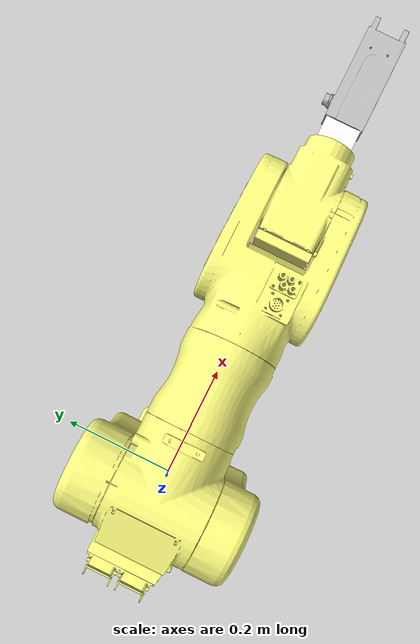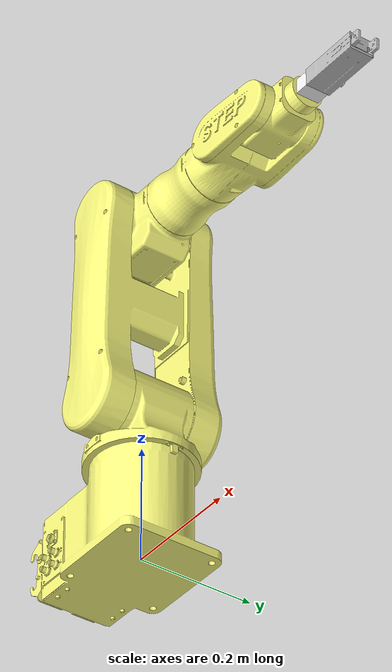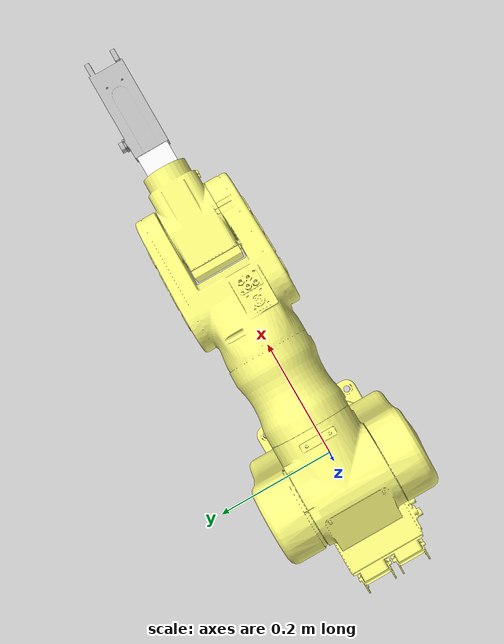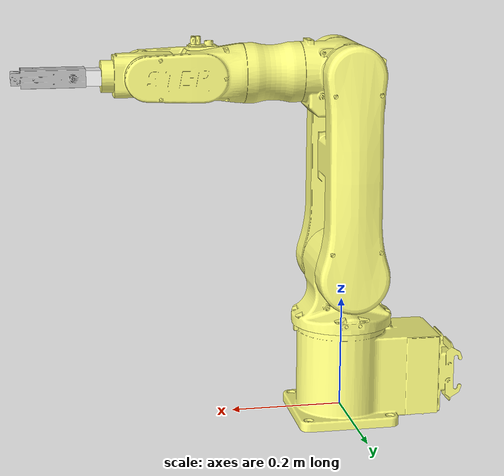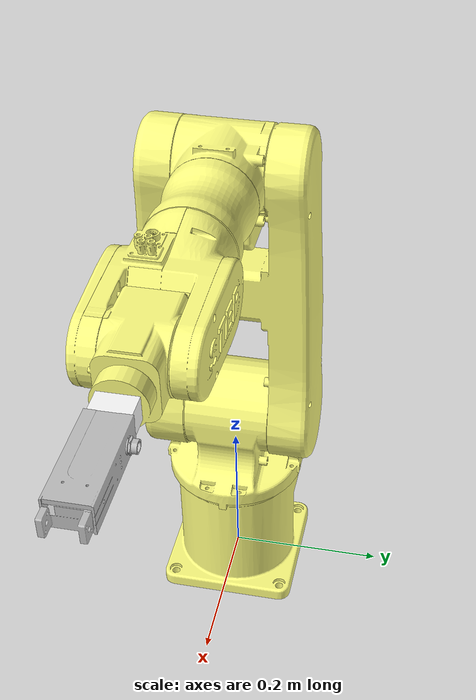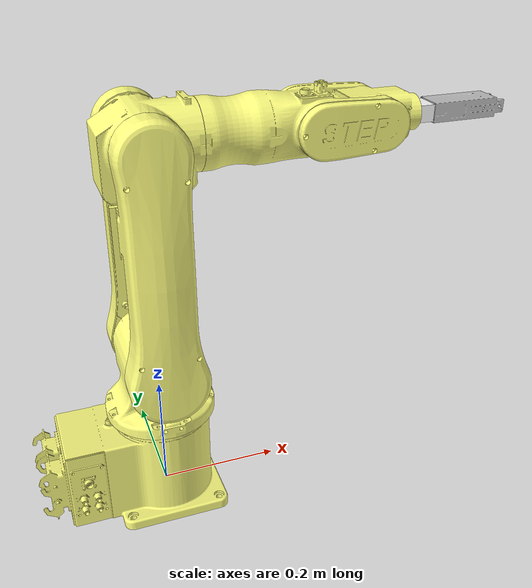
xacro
<?xml version="1.0"?>
<robot name="robot_sd700e" xmlns:xacro="http://ros.org/wiki/xacro">

  <xacro:property name="M_PI" value="3.1415926536"/>

  <link name="base_link">
    <inertial>
      <origin xyz="-0.0194690222590369 -0.000269188119329771 0.0669003838868867" rpy="0 0 0" />
      <mass value="0.1" />
      <inertia ixx="0.000153169404327002" ixy="1.65882461270346E-10" ixz="4.4079170251983E-07" iyy="0.000178370863576969" iyz="-2.76318351033745E-09" izz="0.000146674461881756" />
    </inertial>
    <visual>
      <origin xyz="0 0 0" rpy="0 0 0" />
      <geometry>
        <mesh filename="package://robot_sd700e_description/meshes/base_link.STL" />
      </geometry>
      <material name="">
        <color rgba="1 1 0.501960784313725 1" />
      </material>
    </visual>
    <collision>
      <origin xyz="0 0 0" rpy="0 0 0" />
      <geometry>
        <mesh filename="package://robot_sd700e_description/meshes/base_link.STL" />
      </geometry>
    </collision>
  </link>
  <link name="link1">
    <inertial>
      <origin xyz="6.24979528711656E-05 3.54756693043516E-05 0.0929610027302797" rpy="0 0 0" />
      <mass value="0.00001" />
      <inertia ixx="4.83982220972564E-05" ixy="-1.77040002978859E-10" ixz="3.19080107721578E-11" iyy="4.76414174481088E-05" iyz="-1.87834825511904E-09" izz="3.52854220263338E-05" />
    </inertial>
    <visual>
      <origin xyz="0 0 0" rpy="0 0 0" />
      <geometry>
        <mesh filename="package://robot_sd700e_description/meshes/link1.STL" />
      </geometry>
      <material name="">
        <color rgba="1 1 0.501960784313725 1" />
      </material>
    </visual>
    <collision>
      <origin xyz="0 0 0" rpy="0 0 0" />
      <geometry>
        <mesh filename="package://robot_sd700e_description/meshes/link1.STL" />
      </geometry>
    </collision>
  </link>
  <joint name="joint1" type="revolute">
    <origin xyz="0 0 0.145" rpy="0 0 0" />
    <parent link="base_link" />
    <child link="link1" />
    <!--axis xyz="0 0 -1" /-->
    <axis xyz="0 0 1" />
    <limit lower="-2.96" upper="2.96" effort="100" velocity="1" />
  </joint>
  <link
    name="link2">
    <inertial>
      <origin xyz="0.143798658237929 3.89335646278077E-06 0.0506443388040005" rpy="0 0 0" />
      <mass value="0.00001" />
      <inertia ixx="1.85130744568751E-05" ixy="2.76195499850968E-11" ixz="6.51979051130517E-06" iyy="0.000264350143112589" iyz="2.39001383154591E-09" izz="0.000275170391285063" />
    </inertial>
    <visual>
      <origin xyz="0 0 0" rpy="0 0 0" />
      <geometry>
        <mesh  filename="package://robot_sd700e_description/meshes/link2.STL" />
      </geometry>
      <material name="">
        <color rgba="1 1 0.501960784313725 1" />
      </material>
    </visual>
    <collision>
      <origin  xyz="0 0 0" rpy="0 0 0" />
      <geometry>
        <mesh  filename="package://robot_sd700e_description/meshes/link2.STL" />
      </geometry>
    </collision>
  </link>
  <joint name="joint2" type="revolute">
    <origin xyz="0 0 0.118" rpy="1.5708 -1.5708 3.1416" />
    <!--origin xyz="0 0 0.118" rpy="${M_PI / 2} 0 0" / -->
    <parent link="link1" />
    <child link="link2" />
    <axis xyz="0 0 1" />
    <!--axis xyz="0 0 -1" /-->
    <limit lower="-1.91" upper="1.91" effort="100" velocity="1" />
  </joint>
  <link name="link3">
    <inertial>
      <origin xyz="-0.0105511176614257 0.013415825069451 -0.000783677732801621" rpy="0 0 0" />
      <mass value="0.00001" />
      <inertia ixx="2.29601047838055E-05" ixy="-1.63719092770468E-06" ixz="1.81455332745205E-07" iyy="2.1162736058193E-05" iyz="-1.71577960757657E-07" izz="2.63069623781901E-05" />
    </inertial>
    <visual>
      <origin xyz="0 0 0" rpy="0 0 0" />
      <geometry>
        <mesh  filename="package://robot_sd700e_description/meshes/link3.STL" />
      </geometry>
      <material name="">
        <color rgba="1 1 0.501960784313725 1" />
      </material>
    </visual>
    <collision>
      <origin xyz="0 0 0" rpy="0 0 0" />
      <geometry>
        <mesh filename="package://robot_sd700e_description/meshes/link3.STL" />
      </geometry>
    </collision>
  </link>
  <joint name="joint3" type="revolute">
    <origin xyz="0.35 0 0" rpy="0 0 0" />
    <parent link="link2" />
    <child link="link3" />
    <axis xyz="0 0 1" />
    <limit lower="-3.83"  upper="0.69" effort="100" velocity="1" />
  </joint>
  <link name="link4">
    <inertial>
      <origin xyz="0.00053105459778995 0.00764519471507254 0.12487741102902" rpy="0 0 0" />
      <mass value="0.00001" />
      <inertia ixx="2.35060467930339E-05" ixy="-7.80273185679067E-09" ixz="-5.33242281859617E-09" iyy="2.4038986793376E-05" iyz="-3.24930744421448E-06" izz="1.06991610028112E-05" />
    </inertial>
    <visual>
      <origin xyz="0 0 0" rpy="0 0 0" />
      <geometry>
        <mesh filename="package://robot_sd700e_description/meshes/link4.STL" />
      </geometry>
      <material name="">
        <color rgba="1 1 0.501960784313725 1" />
      </material>
    </visual>
    <collision>
      <origin xyz="0 0 0" rpy="0 0 0" />
      <geometry>
        <mesh filename="package://robot_sd700e_description/meshes/link4.STL" />
      </geometry>
    </collision>
  </link>
  <joint name="joint4" type="revolute">
    <origin xyz="0 0.08 0" rpy="-1.5708 0 0" />
    <parent link="link3" />
    <child link="link4" />
    <!--axis xyz="0 0 -1" /-->
    <axis xyz="0 0 1" />
    <limit lower="-3.22" upper="3.22" effort="100" velocity="1" />
  </joint>
  <link name="link5">
    <inertial>
      <origin xyz="5.00388331529765E-06 0.017136564860525 -0.00579159800832729" rpy="0 0 0" />
      <mass value="0.00001" />
      <inertia ixx="3.02769220666609E-06" ixy="-6.63527422862123E-09" ixz="3.06980670851299E-09" iyy="1.6973682408079E-06" iyz="-2.1985747740643E-07" izz="3.30873178682241E-06" />
    </inertial>
    <visual>
      <origin xyz="0 0 0" rpy="0 0 0" />
      <geometry>
        <mesh filename="package://robot_sd700e_description/meshes/link5.STL" />
      </geometry>
      <material name="">
        <color rgba="1 1 0.501960784313725 1" />
      </material>
    </visual>
    <collision>
      <origin xyz="0 0 0" rpy="0 0 0" />
      <geometry>
        <mesh filename="package://robot_sd700e_description/meshes/link5.STL" />
      </geometry>
    </collision>
  </link>
  <joint name="joint5" type="revolute">
    <origin xyz="0 0 0.27" rpy="1.5708 0 0" />
    <parent link="link4" />
    <child link="link5" />
    <axis xyz="0 0 1" />
    <limit lower="-2.18" upper="2.18"  effort="100" velocity="1" />
  </joint>
  <link name="link6">
    <inertial>
      <origin xyz="2.98155597433514E-18 -2.16840434497101E-17 0.013" rpy="0 0 0" />
      <mass value="0.00001" />
      <inertia ixx="0" ixy="0" ixz="0" iyy="0" iyz="0" izz="0" />
    </inertial>
    <visual>
      <origin xyz="0 0 0" rpy="0 0 0" />
      <geometry>
        <mesh filename="package://robot_sd700e_description/meshes/link6.STL" />
      </geometry>
      <material name="">
        <color rgba="1 1 1 1" />
      </material>
    </visual>
    <collision>
      <origin xyz="0 0 0" rpy="0 0 0" />
      <geometry>
        <mesh filename="package://robot_sd700e_description/meshes/link6.STL" />
      </geometry>
    </collision>
  </link>
  <joint name="joint6" type="revolute">
    <origin xyz="0 0.0745 0" rpy="-1.5708 0 0" />
    <parent link="link5" />
    <child link="link6" />
    <!--axis xyz="0 0 -1" /-->
    <axis xyz="0 0 1" />
    <limit lower="-6.28" upper="6.28" effort="100" velocity="1" />
  </joint>
  <link name="link7">
    <inertial>
      <origin xyz="-2.4931047704497E-07 -0.00154228485453155 0.0894543761927693" rpy="0 0 0" />
      <mass value="0.00001" />
      <inertia ixx="2.20720617168517E-05" ixy="-1.33959955753033E-07" ixz="-4.80345012228219E-12" iyy="1.3850289704466E-05" iyz="1.22347910736772E-07" izz="2.41352773855343E-05" />
    </inertial>
    <visual>
      <origin xyz="0 0 0" rpy="0 0 0" />
      <geometry>
        <mesh filename="package://robot_sd700e_description/meshes/link7.STL" />
      </geometry>
      <material name="">
        <color rgba="0.752941176470588 0.752941176470588 0.752941176470588 1" />
      </material>
    </visual>
    <collision>
      <origin xyz="0 0 0" rpy="0 0 0" />
      <geometry>
        <mesh filename="package://robot_sd700e_description/meshes/link7.STL" />
      </geometry>
    </collision>
  </link>
  <joint name="joint7" type="fixed">
    <origin xyz="0 0 0" rpy="0 0 0" />
    <parent link="link6" />
    <child link="link7" />
    <axis xyz="0 0 0" />
  </joint>

  <!-- Transmissions for ROS Control -->
  <xacro:macro name="transmission_block" params="joint_name">
    <transmission name="tran1">
      <type>transmission_interface/SimpleTransmission</type>
      <joint name="${joint_name}">
        <hardwareInterface>hardware_interface/PositionJointInterface</hardwareInterface>
      </joint>
      <actuator name="motor1">
        <hardwareInterface>hardware_interface/PositionJointInterface</hardwareInterface>
        <mechanicalReduction>1</mechanicalReduction>
      </actuator>
    </transmission>
  </xacro:macro>

  <xacro:transmission_block joint_name="joint1"/>
  <xacro:transmission_block joint_name="joint2"/>
  <xacro:transmission_block joint_name="joint3"/>
  <xacro:transmission_block joint_name="joint4"/>
  <xacro:transmission_block joint_name="joint5"/>
  <xacro:transmission_block joint_name="joint6"/>

  <!-- ros_control plugin -->
  <gazebo>
    <plugin name="gazebo_ros_control" filename="libgazebo_ros_control.so">
      <robotNamespace>/robot_sd700e</robotNamespace>
      <robotSimType>gazebo_ros_control/DefaultRobotHWSim</robotSimType>
      <legacyModeNS>true</legacyModeNS>
    </plugin>
  </gazebo>

</robot>
